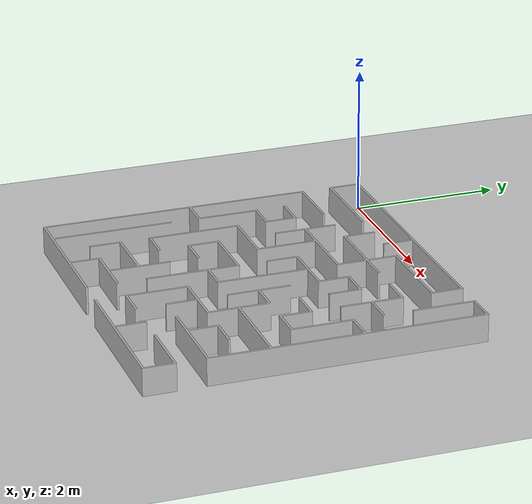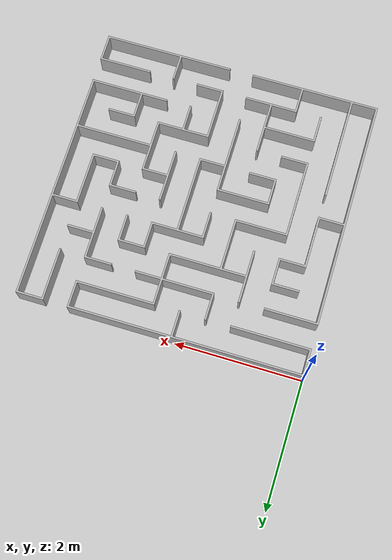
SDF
<?xml version="1.0"?>
<sdf version="1.6">
  <world name="default">

    <include>
      <uri>model://ground_plane</uri>
    </include>

    <include>
      <uri>model://sun</uri>
    </include>

    <scene>
      <shadows>false</shadows>
    </scene>

    <gui fullscreen='0'>
      <camera name='user_camera'>
        <pose frame=''>0.319654 -0.235002 9.29441 0 1.5138 0.009599</pose>
        <view_controller>orbit</view_controller>
        <projection_type>perspective</projection_type>
      </camera>
    </gui>

    <physics type="ode">
      <real_time_update_rate>1000.0</real_time_update_rate>
      <max_step_size>0.001</max_step_size>
      <real_time_factor>1</real_time_factor>
      <ode>
        <solver>
          <type>quick</type>
          <iters>150</iters>
          <precon_iters>0</precon_iters>
          <sor>1.400000</sor>
          <use_dynamic_moi_rescaling>1</use_dynamic_moi_rescaling>
        </solver>
        <constraints>
          <cfm>0.00001</cfm>
          <erp>0.2</erp>
          <contact_max_correcting_vel>2000.000000</contact_max_correcting_vel>
          <contact_surface_layer>0.01000</contact_surface_layer>
        </constraints>
      </ode>
    </physics>

      <model name="my_model">
        <static>true</static>
        <pose>0.0 0.0 0.0 1.57 0.0 -1.57</pose>
        <link name="link">
          <visual name="visual">
            <geometry>
              <mesh>
                <uri>model://maze_turtlebot3/meshes/maze.stl</uri>
                <scale>0.0015 0.0015 0.0015</scale>
              </mesh>
            </geometry>
          </visual>
          <collision name="collision">
            <geometry>
              <mesh>
                <uri>model://maze_turtlebot3/meshes/maze.stl</uri>
                <scale>0.0015 0.0015 0.0015</scale>
              </mesh>
            </geometry>
          </collision>
        </link>
      </model>
  </world>
</sdf>
